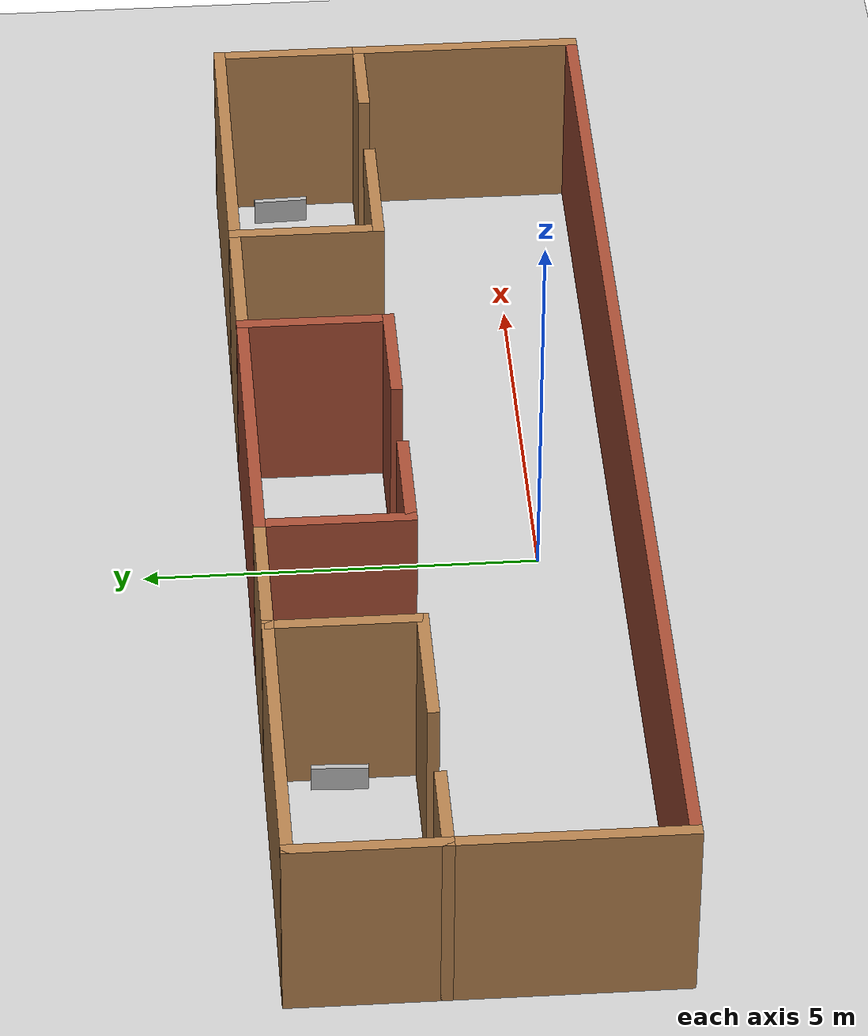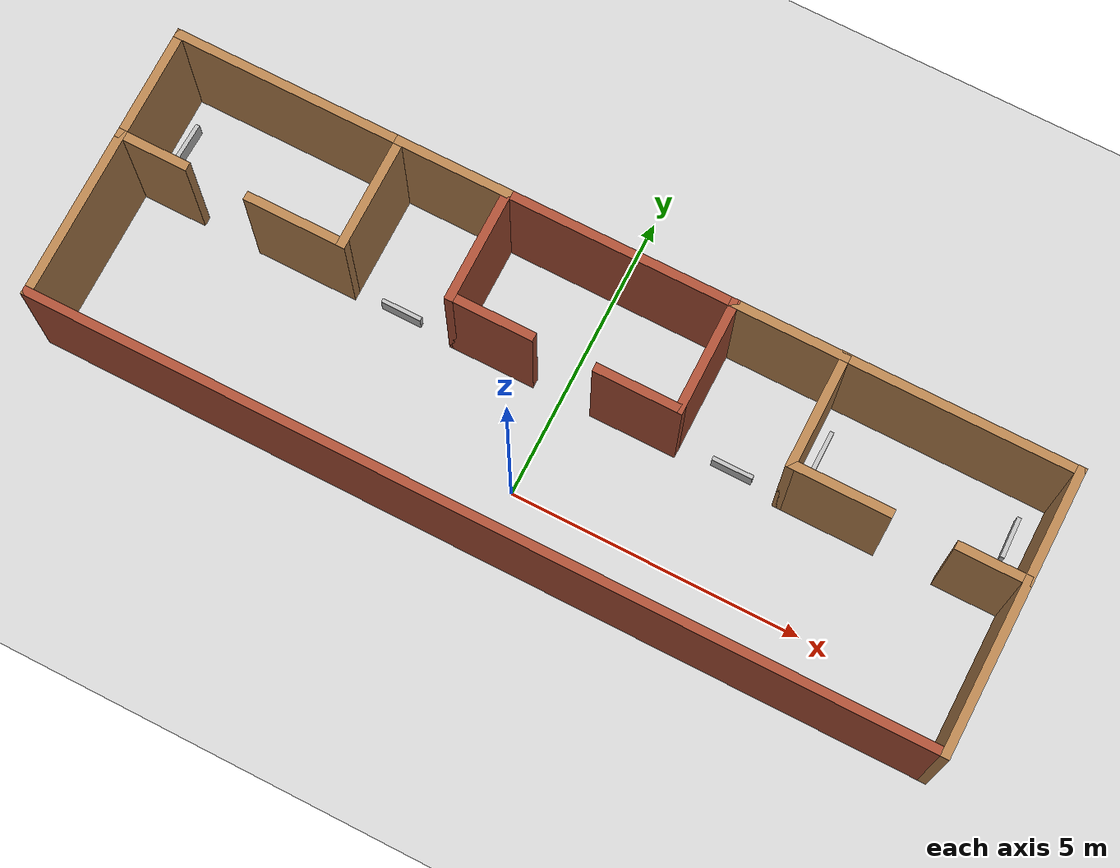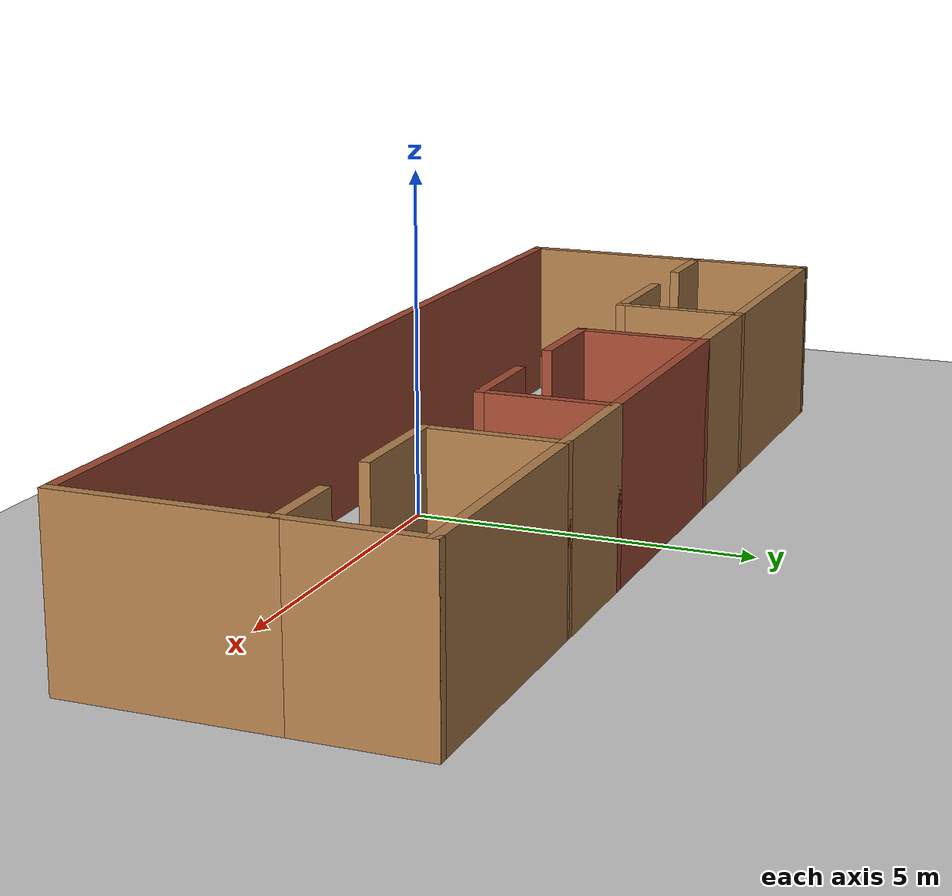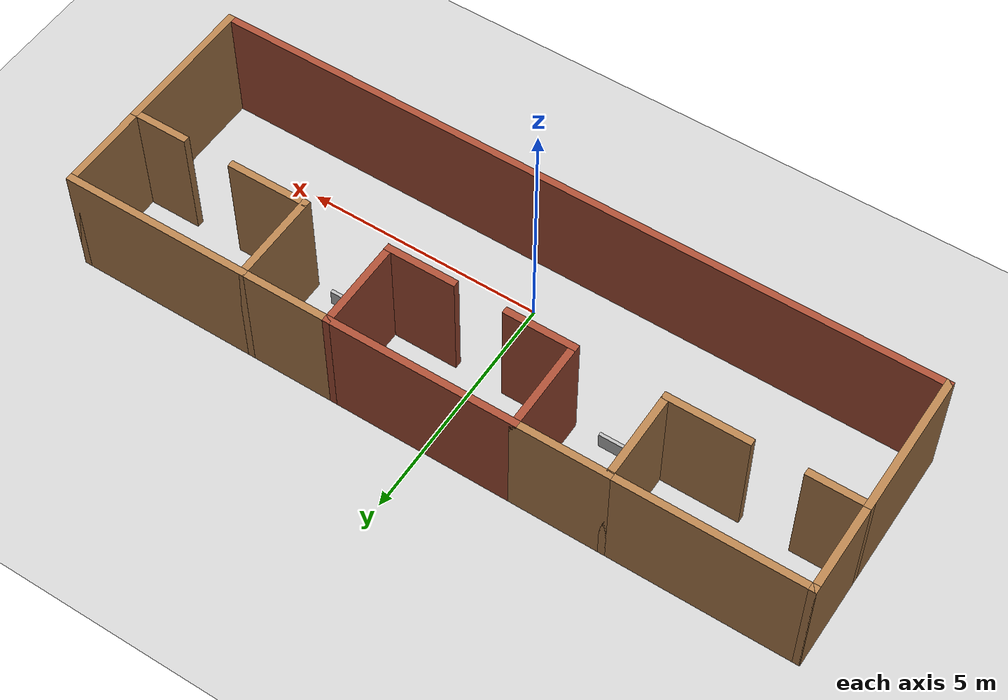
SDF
<sdf version="1.6">
 <world name="default">
  <light name="sun" type="directional">
   <pose>0 0 10 0 -0 0</pose>
   <diffuse>0.8 0.8 0.8 1</diffuse>
   <specular>0.2 0.2 0.2 1</specular>
   <attenuation>
    <range>1000</range>
    <constant>0.9</constant>
    <linear>0.01</linear>
    <quadratic>0.001</quadratic>
   </attenuation>
   <direction>-0.5 0.1 -0.9</direction>
  </light>
  <model name="ground_plane">
   <static>1</static>
   <link name="link">
    <collision name="collision">
     <geometry><plane><normal>0 0 1</normal><size>100 100</size></plane></geometry>
     <surface>
      <contact><collide_bitmask>65535</collide_bitmask></contact>
      <friction><ode><mu>100</mu><mu2>50</mu2></ode></friction>
     </surface>
    </collision>
    <visual name="visual">
     <cast_shadows>0</cast_shadows>
     <geometry><plane><normal>0 0 1</normal><size>100 100</size></plane></geometry>
     <material>
      <script><uri>file://media/materials/scripts/gazebo.material</uri><name>Gazebo/Grey</name></script>
     </material>
    </visual>
   </link>
  </model>
  <gravity>0 0 -9.8</gravity>
  <magnetic_field>6e-06 2.3e-05 -4.2e-05</magnetic_field>
  <atmosphere type="adiabatic"/>
  <physics name="default_physics" default="0" type="ode">
   <max_step_size>0.001</max_step_size>
   <real_time_factor>1</real_time_factor>
   <real_time_update_rate>1000</real_time_update_rate>
  </physics>
  <scene><ambient>0.4 0.4 0.4 1</ambient><background>0.7 0.7 0.7 1</background><shadows>1</shadows></scene>
  <audio><device>default</device></audio>
  <spherical_coordinates>
   <surface_model>EARTH_WGS84</surface_model>
   <latitude_deg>0</latitude_deg>
   <longitude_deg>0</longitude_deg>
   <elevation>0</elevation>
   <heading_deg>0</heading_deg>
  </spherical_coordinates>
  <model name="sadavcvftfyty">
   <pose>0.01207 1.26629 0 0 -0 0</pose>
   <link name="Wall_34">
    <collision name="Wall_34_Collision">
     <geometry><box><size>1.25 0.15 2.5</size></box></geometry>
     <pose>0 0 1.25 0 -0 0</pose>
    </collision>
    <visual name="Wall_34_Visual">
     <pose>0 0 1.25 0 -0 0</pose>
     <geometry><box><size>1.25 0.15 2.5</size></box></geometry>
     <material>
      <script><uri>file://media/materials/scripts/gazebo.material</uri><name>Gazebo/Wood</name></script>
      <ambient>1 1 1 1</ambient>
     </material>
     <meta><layer>0</layer></meta>
    </visual>
    <pose>-7.075 0.5 0 0 -0 3.14159</pose>
   </link>
   <link name="Wall_35">
    <collision name="Wall_35_Collision">
     <geometry><box><size>2 0.15 2.5</size></box></geometry>
     <pose>0 0 1.25 0 -0 0</pose>
    </collision>
    <visual name="Wall_35_Visual">
     <pose>0 0 1.25 0 -0 0</pose>
     <geometry><box><size>2 0.15 2.5</size></box></geometry>
     <material>
      <script><uri>file://media/materials/scripts/gazebo.material</uri><name>Gazebo/Wood</name></script>
      <ambient>1 1 1 1</ambient>
     </material>
     <meta><layer>0</layer></meta>
    </visual>
    <pose>-7.625 1.425 0 0 -0 1.5708</pose>
   </link>
   <link name="Wall_36">
    <collision name="Wall_36_Collision">
     <geometry><box><size>4 0.15 2.5</size></box></geometry>
     <pose>0 0 1.25 0 -0 0</pose>
    </collision>
    <visual name="Wall_36_Visual">
     <pose>0 0 1.25 0 -0 0</pose>
     <geometry><box><size>4 0.15 2.5</size></box></geometry>
     <material>
      <script><uri>file://media/materials/scripts/gazebo.material</uri><name>Gazebo/Wood</name></script>
      <ambient>1 1 1 1</ambient>
     </material>
     <meta><layer>0</layer></meta>
    </visual>
    <pose>-5.7 2.35 0 0 -0 0</pose>
   </link>
   <link name="Wall_37">
    <collision name="Wall_37_Collision">
     <geometry><box><size>2 0.15 2.5</size></box></geometry>
     <pose>0 0 1.25 0 -0 0</pose>
    </collision>
    <visual name="Wall_37_Visual">
     <pose>0 0 1.25 0 -0 0</pose>
     <geometry><box><size>2 0.15 2.5</size></box></geometry>
     <material>
      <script><uri>file://media/materials/scripts/gazebo.material</uri><name>Gazebo/Wood</name></script>
      <ambient>1 1 1 1</ambient>
     </material>
     <meta><layer>0</layer></meta>
    </visual>
    <pose>-3.775 1.425 0 0 -0 -1.5708</pose>
   </link>
   <link name="Wall_38">
    <collision name="Wall_38_Collision">
     <geometry><box><size>1.75 0.15 2.5</size></box></geometry>
     <pose>0 0 1.25 0 -0 0</pose>
    </collision>
    <visual name="Wall_38_Visual">
     <pose>0 0 1.25 0 -0 0</pose>
     <geometry><box><size>1.75 0.15 2.5</size></box></geometry>
     <material>
      <script><uri>file://media/materials/scripts/gazebo.material</uri><name>Gazebo/Wood</name></script>
      <ambient>1 1 1 1</ambient>
     </material>
     <meta><layer>0</layer></meta>
    </visual>
    <pose>-4.575 0.5 0 0 -0 3.14159</pose>
   </link>
   <link name="Wall_40">
    <collision name="Wall_40_Collision">
     <geometry><box><size>2 0.15 2.5</size></box></geometry>
     <pose>0 0 1.25 0 -0 0</pose>
    </collision>
    <visual name="Wall_40_Visual">
     <pose>0 0 1.25 0 -0 0</pose>
     <geometry><box><size>2 0.15 2.5</size></box></geometry>
     <material>
      <script><uri>file://media/materials/scripts/gazebo.material</uri><name>Gazebo/Wood</name></script>
      <ambient>1 1 1 1</ambient>
     </material>
     <meta><layer>0</layer></meta>
    </visual>
    <pose>-2.85 2.35 0 0 -0 0</pose>
   </link>
   <link name="Wall_41">
    <collision name="Wall_41_Collision">
     <geometry><box><size>2 0.15 2.5</size></box></geometry>
     <pose>0 0 1.25 0 -0 0</pose>
    </collision>
    <visual name="Wall_41_Visual">
     <pose>0 0 1.25 0 -0 0</pose>
     <geometry><box><size>2 0.15 2.5</size></box></geometry>
     <material>
      <script><uri>file://media/materials/scripts/gazebo.material</uri><name>Gazebo/Bricks</name></script>
      <ambient>1 1 1 1</ambient>
     </material>
     <meta><layer>0</layer></meta>
    </visual>
    <pose>-1.925 1.425 0 0 -0 -1.5708</pose>
   </link>
   <link name="Wall_42">
    <collision name="Wall_42_Collision">
     <geometry><box><size>1.5 0.15 2.5</size></box></geometry>
     <pose>0 0 1.25 0 -0 0</pose>
    </collision>
    <visual name="Wall_42_Visual">
     <pose>0 0 1.25 0 -0 0</pose>
     <geometry><box><size>1.5 0.15 2.5</size></box></geometry>
     <material>
      <script><uri>file://media/materials/scripts/gazebo.material</uri><name>Gazebo/Bricks</name></script>
      <ambient>1 1 1 1</ambient>
     </material>
     <meta><layer>0</layer></meta>
    </visual>
    <pose>-1.25 0.5 0 0 -0 0</pose>
   </link>
   <link name="Wall_44">
    <collision name="Wall_44_Collision">
     <geometry><box><size>4 0.15 2.5</size></box></geometry>
     <pose>0 0 1.25 0 -0 0</pose>
    </collision>
    <visual name="Wall_44_Visual">
     <pose>0 0 1.25 0 -0 0</pose>
     <geometry><box><size>4 0.15 2.5</size></box></geometry>
     <material>
      <script><uri>file://media/materials/scripts/gazebo.material</uri><name>Gazebo/Bricks</name></script>
      <ambient>1 1 1 1</ambient>
     </material>
     <meta><layer>0</layer></meta>
    </visual>
    <pose>0 2.35 0 0 -0 0</pose>
   </link>
   <link name="Wall_45">
    <collision name="Wall_45_Collision">
     <geometry><box><size>2 0.15 2.5</size></box></geometry>
     <pose>0 0 1.25 0 -0 0</pose>
    </collision>
    <visual name="Wall_45_Visual">
     <pose>0 0 1.25 0 -0 0</pose>
     <geometry><box><size>2 0.15 2.5</size></box></geometry>
     <material>
      <script><uri>file://media/materials/scripts/gazebo.material</uri><name>Gazebo/Bricks</name></script>
      <ambient>1 1 1 1</ambient>
     </material>
     <meta><layer>0</layer></meta>
    </visual>
    <pose>1.925 1.425 0 0 -0 -1.5708</pose>
   </link>
   <link name="Wall_46">
    <collision name="Wall_46_Collision">
     <geometry><box><size>1.5 0.15 2.5</size></box></geometry>
     <pose>0 0 1.25 0 -0 0</pose>
    </collision>
    <visual name="Wall_46_Visual">
     <pose>0 0 1.25 0 -0 0</pose>
     <geometry><box><size>1.5 0.15 2.5</size></box></geometry>
     <material>
      <script><uri>file://media/materials/scripts/gazebo.material</uri><name>Gazebo/Bricks</name></script>
      <ambient>1 1 1 1</ambient>
     </material>
     <meta><layer>0</layer></meta>
    </visual>
    <pose>1.25 0.5 0 0 -0 3.14159</pose>
   </link>
   <link name="Wall_55">
    <collision name="Wall_55_Collision">
     <geometry><box><size>3 0.15 2.5</size></box></geometry>
     <pose>0 0 1.25 0 -0 0</pose>
    </collision>
    <visual name="Wall_55_Visual">
     <pose>0 0 1.25 0 -0 0</pose>
     <geometry><box><size>3 0.15 2.5</size></box></geometry>
     <material>
      <script><uri>file://media/materials/scripts/gazebo.material</uri><name>Gazebo/Wood</name></script>
      <ambient>1 1 1 1</ambient>
     </material>
     <meta><layer>0</layer></meta>
    </visual>
    <pose>-7.625 -0.925 0 0 -0 -1.5708</pose>
   </link>
   <link name="Wall_66">
    <collision name="Wall_66_Collision">
     <geometry><box><size>2 0.15 2.5</size></box></geometry>
     <pose>0 0 1.25 0 -0 0</pose>
    </collision>
    <visual name="Wall_66_Visual">
     <pose>0 0 1.25 0 -0 0</pose>
     <geometry><box><size>2 0.15 2.5</size></box></geometry>
     <material>
      <script><uri>file://media/materials/scripts/gazebo.material</uri><name>Gazebo/Wood</name></script>
      <ambient>1 1 1 1</ambient>
     </material>
     <meta><layer>0</layer></meta>
    </visual>
    <pose>2.85 2.35 0 0 -0 0</pose>
   </link>
   <link name="Wall_67">
    <collision name="Wall_67_Collision">
     <geometry><box><size>2 0.15 2.5</size></box></geometry>
     <pose>0 0 1.25 0 -0 0</pose>
    </collision>
    <visual name="Wall_67_Visual">
     <pose>0 0 1.25 0 -0 0</pose>
     <geometry><box><size>2 0.15 2.5</size></box></geometry>
     <material>
      <script><uri>file://media/materials/scripts/gazebo.material</uri><name>Gazebo/Wood</name></script>
      <ambient>1 1 1 1</ambient>
     </material>
     <meta><layer>0</layer></meta>
    </visual>
    <pose>3.775 1.425 0 0 -0 -1.5708</pose>
   </link>
   <link name="Wall_68">
    <collision name="Wall_68_Collision">
     <geometry><box><size>1.75 0.15 2.5</size></box></geometry>
     <pose>0 0 1.25 0 -0 0</pose>
    </collision>
    <visual name="Wall_68_Visual">
     <pose>0 0 1.25 0 -0 0</pose>
     <geometry><box><size>1.75 0.15 2.5</size></box></geometry>
     <material>
      <script><uri>file://media/materials/scripts/gazebo.material</uri><name>Gazebo/Wood</name></script>
      <ambient>1 1 1 1</ambient>
     </material>
     <meta><layer>0</layer></meta>
    </visual>
    <pose>4.575 0.5 0 0 -0 0</pose>
   </link>
   <link name="Wall_70">
    <collision name="Wall_70_Collision">
     <geometry><box><size>4 0.15 2.5</size></box></geometry>
     <pose>0 0 1.25 0 -0 0</pose>
    </collision>
    <visual name="Wall_70_Visual">
     <pose>0 0 1.25 0 -0 0</pose>
     <geometry><box><size>4 0.15 2.5</size></box></geometry>
     <material>
      <script><uri>file://media/materials/scripts/gazebo.material</uri><name>Gazebo/Wood</name></script>
      <ambient>1 1 1 1</ambient>
     </material>
     <meta><layer>0</layer></meta>
    </visual>
    <pose>5.7 2.35 0 0 -0 0</pose>
   </link>
   <link name="Wall_71">
    <collision name="Wall_71_Collision">
     <geometry><box><size>2 0.15 2.5</size></box></geometry>
     <pose>0 0 1.25 0 -0 0</pose>
    </collision>
    <visual name="Wall_71_Visual">
     <pose>0 0 1.25 0 -0 0</pose>
     <geometry><box><size>2 0.15 2.5</size></box></geometry>
     <material>
      <script><uri>file://media/materials/scripts/gazebo.material</uri><name>Gazebo/Wood</name></script>
      <ambient>1 1 1 1</ambient>
     </material>
     <meta><layer>0</layer></meta>
    </visual>
    <pose>7.625 1.425 0 0 -0 -1.5708</pose>
   </link>
   <link name="Wall_72">
    <collision name="Wall_72_Collision">
     <geometry><box><size>1.25 0.15 2.5</size></box></geometry>
     <pose>0 0 1.25 0 -0 0</pose>
    </collision>
    <visual name="Wall_72_Visual">
     <pose>0 0 1.25 0 -0 0</pose>
     <geometry><box><size>1.25 0.15 2.5</size></box></geometry>
     <material>
      <script><uri>file://media/materials/scripts/gazebo.material</uri><name>Gazebo/Wood</name></script>
      <ambient>1 1 1 1</ambient>
     </material>
     <meta><layer>0</layer></meta>
    </visual>
    <pose>7.075 0.5 0 0 -0 3.14159</pose>
   </link>
   <link name="Wall_74">
    <collision name="Wall_74_Collision">
     <geometry><box><size>3 0.15 2.5</size></box></geometry>
     <pose>0 0 1.25 0 -0 0</pose>
    </collision>
    <visual name="Wall_74_Visual">
     <pose>0 0 1.25 0 -0 0</pose>
     <geometry><box><size>3 0.15 2.5</size></box></geometry>
     <material>
      <script><uri>file://media/materials/scripts/gazebo.material</uri><name>Gazebo/Wood</name></script>
      <ambient>1 1 1 1</ambient>
     </material>
     <meta><layer>0</layer></meta>
    </visual>
    <pose>7.625 -0.925 0 0 -0 -1.5708</pose>
   </link>
   <link name="Wall_76">
    <collision name="Wall_76_Collision">
     <geometry><box><size>15.25 0.15 2.5</size></box></geometry>
     <pose>0 0 1.25 0 -0 0</pose>
    </collision>
    <visual name="Wall_76_Visual">
     <pose>0 0 1.25 0 -0 0</pose>
     <geometry><box><size>15.25 0.15 2.5</size></box></geometry>
     <material>
      <script><uri>file://media/materials/scripts/gazebo.material</uri><name>Gazebo/Bricks</name></script>
      <ambient>1 1 1 1</ambient>
     </material>
     <meta><layer>0</layer></meta>
    </visual>
    <pose>-0.075 -2.35 0 0 -0 0</pose>
   </link>
   <static>1</static>
  </model>
  <model name="pizza_panel">
   <static>1</static>
   <link name="box">
    <collision name="collision"><geometry><box><size>0.55 0.075 0.2</size></box></geometry></collision>
    <visual name="visual">
     <geometry><box><size>0.7 0.07 0.35</size></box></geometry>
     <material>
      <script>
       <uri>model://pizza_panel/materials/scripts</uri>
       <uri>model://pizza_panel/materials/textures</uri>
       <name>pizza_panel</name>
      </script>
     </material>
    </visual>
   </link>
   <pose>2.92125 1.87331 0.185206 0 -0 0</pose>
  </model>
  <model name="kite_panel">
   <static>1</static>
   <link name="box">
    <collision name="collision"><geometry><box><size>0.55 0.075 0.2</size></box></geometry></collision>
    <visual name="visual">
     <geometry><box><size>0.7 0.07 0.35</size></box></geometry>
     <material>
      <script>
       <uri>model://kite_panel/materials/scripts</uri>
       <uri>model://kite_panel/materials/textures</uri>
       <name>kite_panel</name>
      </script>
     </material>
    </visual>
   </link>
   <pose>-2.89025 1.79826 0.170797 0 -0 0</pose>
  </model>
  <light name="user_spot_light_0" type="spot">
   <pose>-2.98301 1.81279 1 0 -0 0</pose>
   <diffuse>0.5 0.5 0.5 1</diffuse>
   <specular>0.1 0.1 0.1 1</specular>
   <direction>0 0 -1</direction>
   <attenuation>
    <range>20</range>
    <constant>0.5</constant>
    <linear>0.01</linear>
    <quadratic>0.001</quadratic>
   </attenuation>
   <cast_shadows>0</cast_shadows>
   <spot><inner_angle>0.6</inner_angle><outer_angle>1</outer_angle><falloff>1</falloff></spot>
  </light>
  <light name="user_spot_light_1" type="spot">
   <pose>2.91956 1.84407 1 0 -0 0</pose>
   <diffuse>0.5 0.5 0.5 1</diffuse>
   <specular>0.1 0.1 0.1 1</specular>
   <direction>0 0 -1</direction>
   <attenuation>
    <range>20</range>
    <constant>0.5</constant>
    <linear>0.01</linear>
    <quadratic>0.001</quadratic>
   </attenuation>
   <cast_shadows>0</cast_shadows>
   <spot><inner_angle>0.6</inner_angle><outer_angle>1</outer_angle><falloff>1</falloff></spot>
  </light>
  <model name="kite_panel_clone">
   <static>1</static>
   <link name="box">
    <collision name="collision"><geometry><box><size>0.55 0.075 0.2</size></box></geometry></collision>
    <visual name="visual">
     <geometry><box><size>0.7 0.07 0.35</size></box></geometry>
     <material>
      <script>
       <uri>model://kite_panel/materials/scripts</uri>
       <uri>model://kite_panel/materials/textures</uri>
       <name>kite_panel</name>
      </script>
     </material>
    </visual>
   </link>
   <pose>-7.30809 2.70678 0.170797 0 -0 1.53144</pose>
  </model>
  <model name="kite_panel_clone_0">
   <static>1</static>
   <link name="box">
    <collision name="collision"><geometry><box><size>0.55 0.075 0.2</size></box></geometry></collision>
    <visual name="visual">
     <geometry><box><size>0.7 0.07 0.35</size></box></geometry>
     <material>
      <script>
       <uri>model://kite_panel/materials/scripts</uri>
       <uri>model://kite_panel/materials/textures</uri>
       <name>kite_panel</name>
      </script>
     </material>
    </visual>
   </link>
   <pose>7.24213 2.84681 0.170797 0 0 -1.53603</pose>
  </model>
  <model name="pizza_panel_clone">
   <static>1</static>
   <link name="box">
    <collision name="collision"><geometry><box><size>0.55 0.075 0.2</size></box></geometry></collision>
    <visual name="visual">
     <geometry><box><size>0.7 0.07 0.35</size></box></geometry>
     <material>
      <script>
       <uri>model://pizza_panel/materials/scripts</uri>
       <uri>model://pizza_panel/materials/textures</uri>
       <name>pizza_panel</name>
      </script>
     </material>
    </visual>
   </link>
   <pose>-3.99713 2.77464 0.185206 0 0 -1.61291</pose>
  </model>
  <model name="pizza_panel_clone_0">
   <static>1</static>
   <link name="box">
    <collision name="collision"><geometry><box><size>0.55 0.075 0.2</size></box></geometry></collision>
    <visual name="visual">
     <geometry><box><size>0.7 0.07 0.35</size></box></geometry>
     <material>
      <script>
       <uri>model://pizza_panel/materials/scripts</uri>
       <uri>model://pizza_panel/materials/textures</uri>
       <name>pizza_panel</name>
      </script>
     </material>
    </visual>
   </link>
   <pose>4.04884 2.74887 0.185206 0 -0 1.57164</pose>
  </model>
  <light name="user_spot_light_2" type="spot">
   <pose>-7.32072 2.77216 1 0 -0 0</pose>
   <diffuse>0.5 0.5 0.5 1</diffuse>
   <specular>0.1 0.1 0.1 1</specular>
   <direction>0 0 -1</direction>
   <attenuation>
    <range>20</range>
    <constant>0.5</constant>
    <linear>0.01</linear>
    <quadratic>0.001</quadratic>
   </attenuation>
   <cast_shadows>0</cast_shadows>
   <spot><inner_angle>0.6</inner_angle><outer_angle>1</outer_angle><falloff>1</falloff></spot>
  </light>
  <light name="user_spot_light_3" type="spot">
   <pose>-4.18969 2.81508 1 0 -0 0</pose>
   <diffuse>0.5 0.5 0.5 1</diffuse>
   <specular>0.1 0.1 0.1 1</specular>
   <direction>0 0 -1</direction>
   <attenuation>
    <range>20</range>
    <constant>0.5</constant>
    <linear>0.01</linear>
    <quadratic>0.001</quadratic>
   </attenuation>
   <cast_shadows>0</cast_shadows>
   <spot><inner_angle>0.6</inner_angle><outer_angle>1</outer_angle><falloff>1</falloff></spot>
  </light>
  <light name="user_spot_light_4" type="spot">
   <pose>4.13538 2.75065 1 0 -0 0</pose>
   <diffuse>0.5 0.5 0.5 1</diffuse>
   <specular>0.1 0.1 0.1 1</specular>
   <direction>0 0 -1</direction>
   <attenuation>
    <range>20</range>
    <constant>0.5</constant>
    <linear>0.01</linear>
    <quadratic>0.001</quadratic>
   </attenuation>
   <cast_shadows>0</cast_shadows>
   <spot><inner_angle>0.6</inner_angle><outer_angle>1</outer_angle><falloff>1</falloff></spot>
  </light>
  <light name="user_spot_light_5" type="spot">
   <pose>7.21574 2.90799 1 0 -0 0</pose>
   <diffuse>0.5 0.5 0.5 1</diffuse>
   <specular>0.1 0.1 0.1 1</specular>
   <direction>0 0 -1</direction>
   <attenuation>
    <range>20</range>
    <constant>0.5</constant>
    <linear>0.01</linear>
    <quadratic>0.001</quadratic>
   </attenuation>
   <cast_shadows>0</cast_shadows>
   <spot><inner_angle>0.6</inner_angle><outer_angle>1</outer_angle><falloff>1</falloff></spot>
  </light>
 </world>
</sdf>
